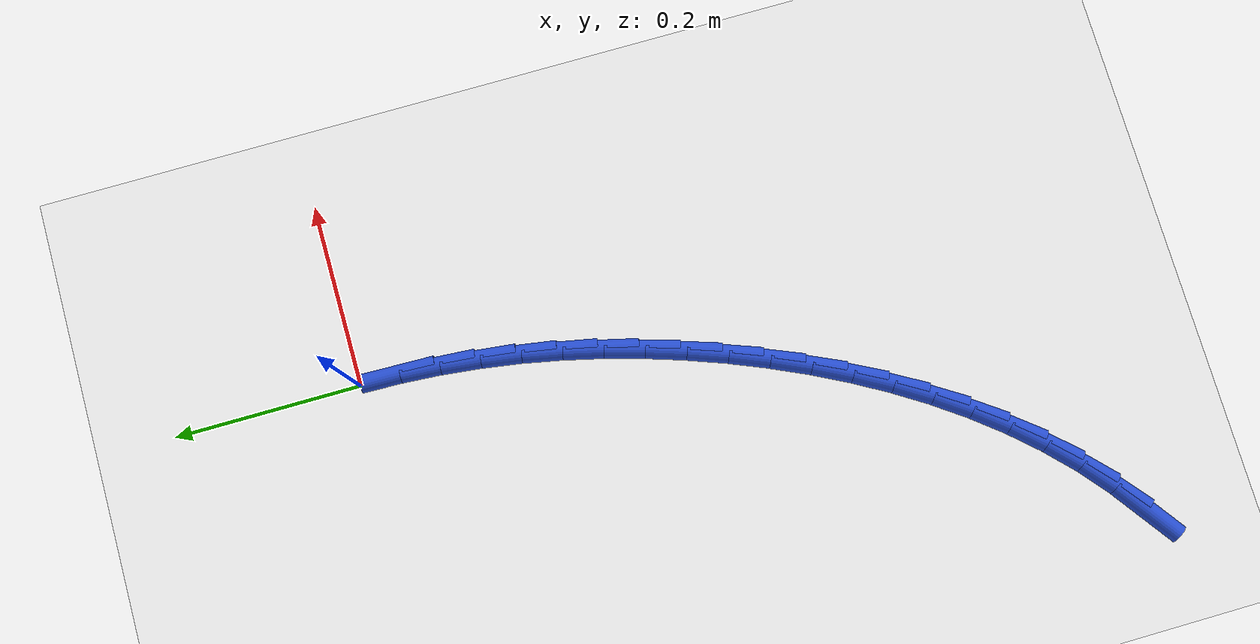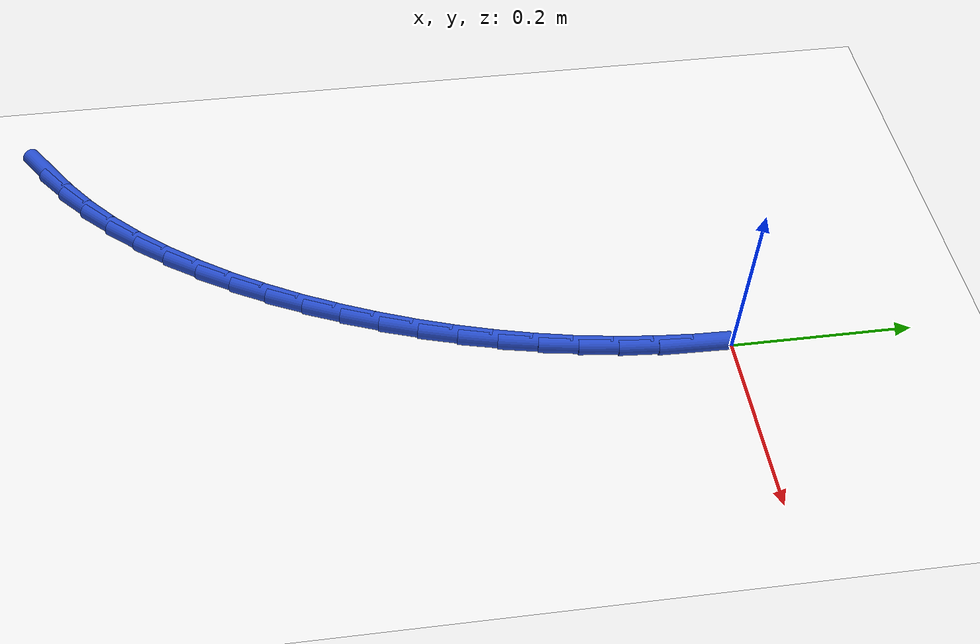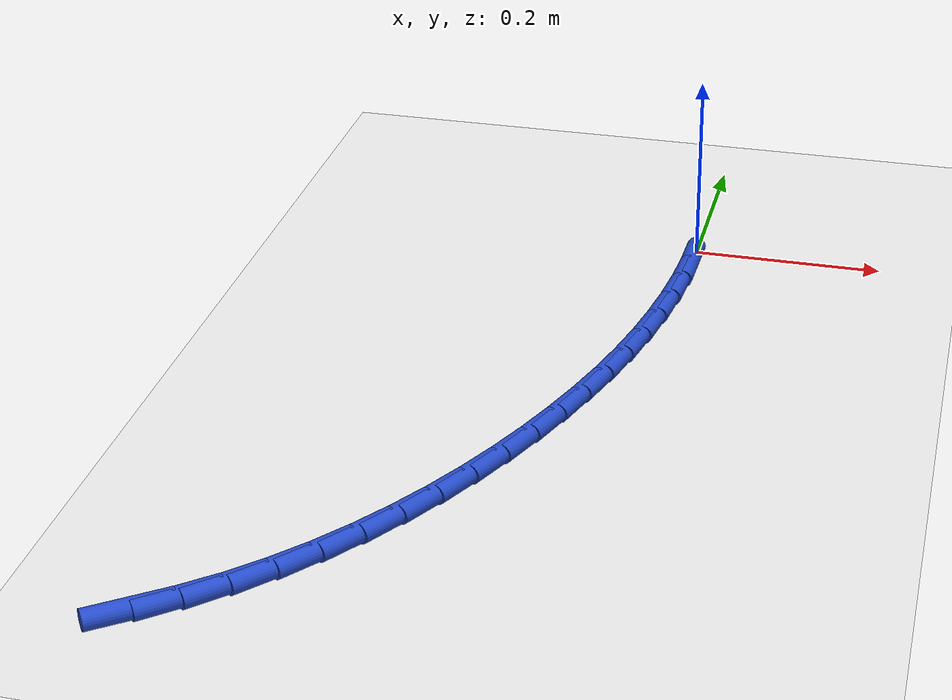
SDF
<sdf version="1.6">
 <world name="default">
  <model name="ground_plane">
   <static>1</static>
   <link name="link">
    <collision name="collision">
     <geometry><plane><normal>0 0 1</normal><size>100 100</size></plane></geometry>
     <surface><friction><ode><mu>100</mu><mu2>50</mu2></ode></friction></surface>
    </collision>
    <visual name="visual">
     <cast_shadows>0</cast_shadows>
     <geometry><plane><normal>0 0 1</normal><size>100 100</size></plane></geometry>
     <material>
      <script><uri>file://media/materials/scripts/gazebo.material</uri><name>Gazebo/WhiteGlow</name></script>
     </material>
    </visual>
   </link>
  </model>
  <model name="line">
   <link name="link_140">
    <pose>-0.35057483197600803 -0.7507621251323359 0.01 0 1.57 0.6213742863875501</pose>
    <collision name="collision">
     <geometry><cylinder><radius>0.01</radius><length>0.08</length></cylinder></geometry>
    </collision>
    <visual name="visual">
     <material>
      <script><name>Gazebo/Blue</name><uri>file://media/materials/scripts/gazebo.material</uri></script>
     </material>
     <geometry><cylinder><radius>0.01</radius><length>0.08</length></cylinder></geometry>
    </visual>
   </link>
   <link name="link_141">
    <pose>-0.31714265071454023 -0.7268251594558179 0.01 0 1.57 0.6916536918775968</pose>
    <collision name="collision">
     <geometry><cylinder><radius>0.01</radius><length>0.08</length></cylinder></geometry>
    </collision>
    <visual name="visual">
     <material>
      <script><name>Gazebo/Blue</name><uri>file://media/materials/scripts/gazebo.material</uri></script>
     </material>
     <geometry><cylinder><radius>0.01</radius><length>0.08</length></cylinder></geometry>
    </visual>
   </link>
   <link name="link_142">
    <pose>-0.2853087896756824 -0.7004629005204672 0.01 0 1.57 0.7639385872177938</pose>
    <collision name="collision">
     <geometry><cylinder><radius>0.01</radius><length>0.08</length></cylinder></geometry>
    </collision>
    <visual name="visual">
     <material>
      <script><name>Gazebo/Blue</name><uri>file://media/materials/scripts/gazebo.material</uri></script>
     </material>
     <geometry><cylinder><radius>0.01</radius><length>0.08</length></cylinder></geometry>
    </visual>
   </link>
   <link name="link_143">
    <pose>-0.2551594716140203 -0.6715805710895716 0.01 0 1.57 0.8311769936323954</pose>
    <collision name="collision">
     <geometry><cylinder><radius>0.01</radius><length>0.08</length></cylinder></geometry>
    </collision>
    <visual name="visual">
     <material>
      <script><name>Gazebo/Blue</name><uri>file://media/materials/scripts/gazebo.material</uri></script>
     </material>
     <geometry><cylinder><radius>0.01</radius><length>0.08</length></cylinder></geometry>
    </visual>
   </link>
   <link name="link_144">
    <pose>-0.22669781374802714 -0.6403860120141035 0.01 0 1.57 0.892947657436479</pose>
    <collision name="collision">
     <geometry><cylinder><radius>0.01</radius><length>0.08</length></cylinder></geometry>
    </collision>
    <visual name="visual">
     <material>
      <script><name>Gazebo/Blue</name><uri>file://media/materials/scripts/gazebo.material</uri></script>
     </material>
     <geometry><cylinder><radius>0.01</radius><length>0.08</length></cylinder></geometry>
    </visual>
   </link>
   <link name="link_145">
    <pose>-0.19991716266358503 -0.6071226426430325 0.01 0 1.57 0.9497377876235317</pose>
    <collision name="collision">
     <geometry><cylinder><radius>0.01</radius><length>0.08</length></cylinder></geometry>
    </collision>
    <visual name="visual">
     <material>
      <script><name>Gazebo/Blue</name><uri>file://media/materials/scripts/gazebo.material</uri></script>
     </material>
     <geometry><cylinder><radius>0.01</radius><length>0.08</length></cylinder></geometry>
    </visual>
   </link>
   <link name="link_146">
    <pose>-0.17481086494657586 -0.5720338823253277 0.01 0 1.57 1.0020767065684835</pose>
    <collision name="collision">
     <geometry><cylinder><radius>0.01</radius><length>0.08</length></cylinder></geometry>
    </collision>
    <visual name="visual">
     <material>
      <script><name>Gazebo/Blue</name><uri>file://media/materials/scripts/gazebo.material</uri></script>
     </material>
     <geometry><cylinder><radius>0.01</radius><length>0.08</length></cylinder></geometry>
    </visual>
   </link>
   <link name="link_147">
    <pose>-0.15137226718288269 -0.5353631504099595 0.01 0 1.57 1.0505014293280899</pose>
    <collision name="collision">
     <geometry><cylinder><radius>0.01</radius><length>0.08</length></cylinder></geometry>
    </collision>
    <visual name="visual">
     <material>
      <script><name>Gazebo/Blue</name><uri>file://media/materials/scripts/gazebo.material</uri></script>
     </material>
     <geometry><cylinder><radius>0.01</radius><length>0.08</length></cylinder></geometry>
    </visual>
   </link>
   <link name="link_148">
    <pose>-0.12959471595838734 -0.4973538662458973 0.01 0 1.57 1.0955365478053252</pose>
    <collision name="collision">
     <geometry><cylinder><radius>0.01</radius><length>0.08</length></cylinder></geometry>
    </collision>
    <visual name="visual">
     <material>
      <script><name>Gazebo/Blue</name><uri>file://media/materials/scripts/gazebo.material</uri></script>
     </material>
     <geometry><cylinder><radius>0.01</radius><length>0.08</length></cylinder></geometry>
    </visual>
   </link>
   <link name="link_149">
    <pose>-0.10947155785897206 -0.45824944918211014 0.01 0 1.57 1.1376846517908923</pose>
    <collision name="collision">
     <geometry><cylinder><radius>0.01</radius><length>0.08</length></cylinder></geometry>
    </collision>
    <visual name="visual">
     <material>
      <script><name>Gazebo/Blue</name><uri>file://media/materials/scripts/gazebo.material</uri></script>
     </material>
     <geometry><cylinder><radius>0.01</radius><length>0.08</length></cylinder></geometry>
    </visual>
   </link>
   <link name="link_150">
    <pose>-0.09099613947051906 -0.4182933185675676 0.01 0 1.57 1.1774249046500447</pose>
    <collision name="collision">
     <geometry><cylinder><radius>0.01</radius><length>0.08</length></cylinder></geometry>
    </collision>
    <visual name="visual">
     <material>
      <script><name>Gazebo/Blue</name><uri>file://media/materials/scripts/gazebo.material</uri></script>
     </material>
     <geometry><cylinder><radius>0.01</radius><length>0.08</length></cylinder></geometry>
    </visual>
   </link>
   <link name="link_151">
    <pose>-0.07416181825178138 -0.3777288335686024 0.01 0 1.57 1.2157714940406465</pose>
    <collision name="collision">
     <geometry><cylinder><radius>0.01</radius><length>0.08</length></cylinder></geometry>
    </collision>
    <visual name="visual">
     <material>
      <script><name>Gazebo/Blue</name><uri>file://media/materials/scripts/gazebo.material</uri></script>
     </material>
     <geometry><cylinder><radius>0.01</radius><length>0.08</length></cylinder></geometry>
    </visual>
   </link>
   <link name="link_152">
    <pose>-0.058970451563279375 -0.3367523053832783 0.01 0 1.57 1.2545372332689535</pose>
    <collision name="collision">
     <geometry><cylinder><radius>0.01</radius><length>0.08</length></cylinder></geometry>
    </collision>
    <visual name="visual">
     <material>
      <script><name>Gazebo/Blue</name><uri>file://media/materials/scripts/gazebo.material</uri></script>
     </material>
     <geometry><cylinder><radius>0.01</radius><length>0.08</length></cylinder></geometry>
    </visual>
   </link>
   <link name="link_153">
    <pose>-0.04544761663886597 -0.29542875288667886 0.01 0 1.57 1.2940336404456136</pose>
    <collision name="collision">
     <geometry><cylinder><radius>0.01</radius><length>0.08</length></cylinder></geometry>
    </collision>
    <visual name="visual">
     <material>
      <script><name>Gazebo/Blue</name><uri>file://media/materials/scripts/gazebo.material</uri></script>
     </material>
     <geometry><cylinder><radius>0.01</radius><length>0.08</length></cylinder></geometry>
    </visual>
   </link>
   <link name="link_154">
    <pose>-0.033622996078988186 -0.2538004712610093 0.01 0 1.57 1.3342820832535747</pose>
    <collision name="collision">
     <geometry><cylinder><radius>0.01</radius><length>0.08</length></cylinder></geometry>
    </collision>
    <visual name="visual">
     <material>
      <script><name>Gazebo/Blue</name><uri>file://media/materials/scripts/gazebo.material</uri></script>
     </material>
     <geometry><cylinder><radius>0.01</radius><length>0.08</length></cylinder></geometry>
    </visual>
   </link>
   <link name="link_155">
    <pose>-0.023526272484092968 -0.2119097556884746 0.01 0 1.57 1.375297277586042</pose>
    <collision name="collision">
     <geometry><cylinder><radius>0.01</radius><length>0.08</length></cylinder></geometry>
    </collision>
    <visual name="visual">
     <material>
      <script><name>Gazebo/Blue</name><uri>file://media/materials/scripts/gazebo.material</uri></script>
     </material>
     <geometry><cylinder><radius>0.01</radius><length>0.08</length></cylinder></geometry>
    </visual>
   </link>
   <link name="link_156">
    <pose>-0.015187128454627174 -0.16979890135127895 0.01 0 1.57 1.4170862168216276</pose>
    <collision name="collision">
     <geometry><cylinder><radius>0.01</radius><length>0.08</length></cylinder></geometry>
    </collision>
    <visual name="visual">
     <material>
      <script><name>Gazebo/Blue</name><uri>file://media/materials/scripts/gazebo.material</uri></script>
     </material>
     <geometry><cylinder><radius>0.01</radius><length>0.08</length></cylinder></geometry>
    </visual>
   </link>
   <link name="link_157">
    <pose>-0.0086352465910381 -0.12751020343162914 0.01 0 1.57 1.4596470968553572</pose>
    <collision name="collision">
     <geometry><cylinder><radius>0.01</radius><length>0.08</length></cylinder></geometry>
    </collision>
    <visual name="visual">
     <material>
      <script><name>Gazebo/Blue</name><uri>file://media/materials/scripts/gazebo.material</uri></script>
     </material>
     <geometry><cylinder><radius>0.01</radius><length>0.08</length></cylinder></geometry>
    </visual>
   </link>
   <link name="link_158">
    <pose>-0.003900309493772558 -0.08508595711172931 0.01 0 1.57 1.5029682785564453</pose>
    <collision name="collision">
     <geometry><cylinder><radius>0.01</radius><length>0.08</length></cylinder></geometry>
    </collision>
    <visual name="visual">
     <material>
      <script><name>Gazebo/Blue</name><uri>file://media/materials/scripts/gazebo.material</uri></script>
     </material>
     <geometry><cylinder><radius>0.01</radius><length>0.08</length></cylinder></geometry>
    </visual>
   </link>
   <link name="link_159">
    <pose>-0.001011999763277531 -0.04256845757378463 0.01 0 1.57 1.5470273383854096</pose>
    <collision name="collision">
     <geometry><cylinder><radius>0.01</radius><length>0.08</length></cylinder></geometry>
    </collision>
    <visual name="visual">
     <material>
      <script><name>Gazebo/Blue</name><uri>file://media/materials/scripts/gazebo.material</uri></script>
     </material>
     <geometry><cylinder><radius>0.01</radius><length>0.08</length></cylinder></geometry>
    </visual>
   </link>
  </model>
 </world>
</sdf>
